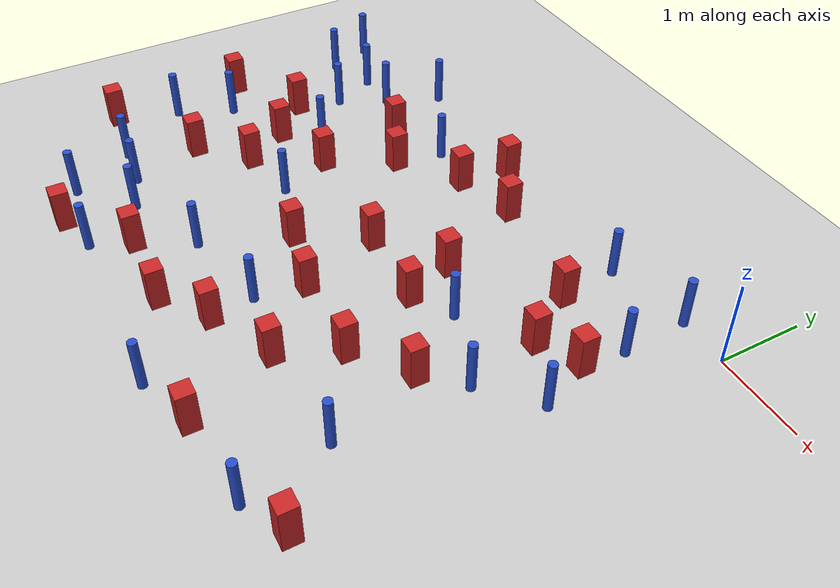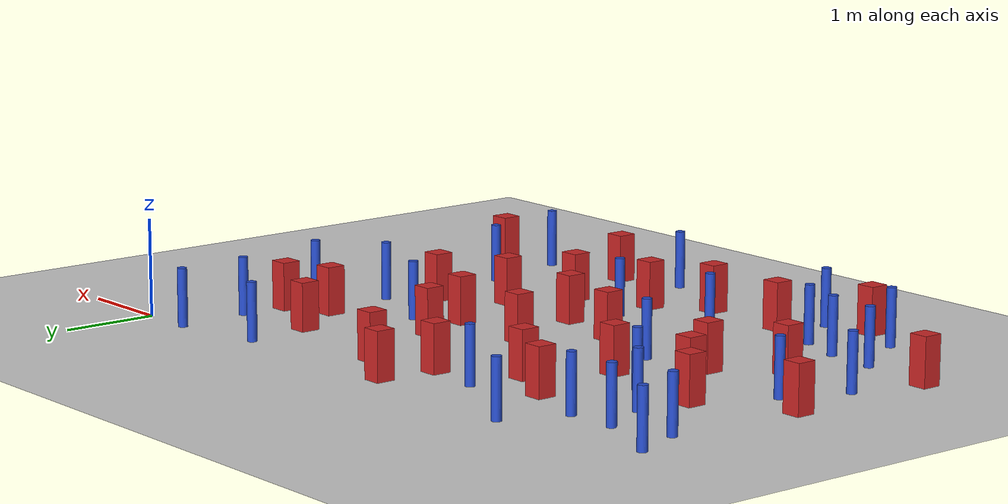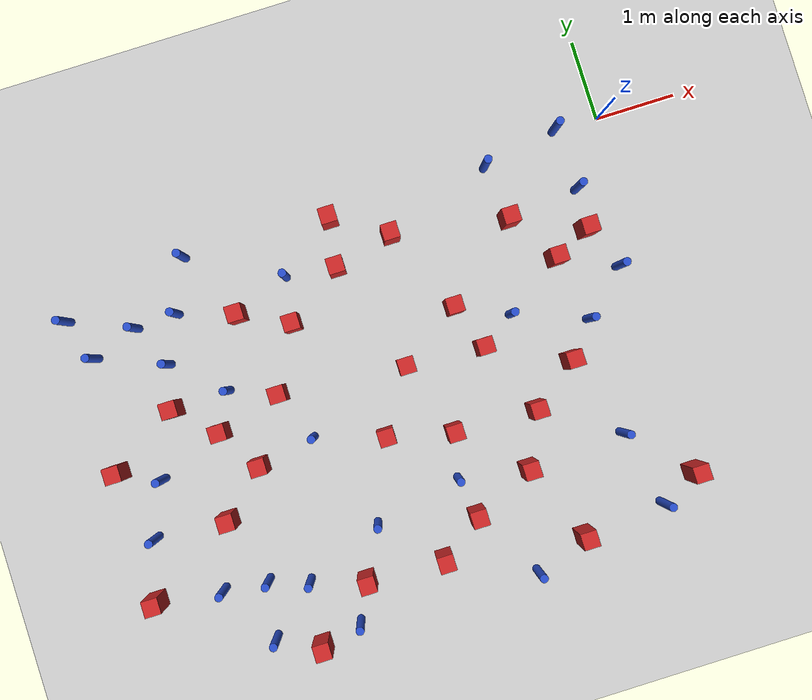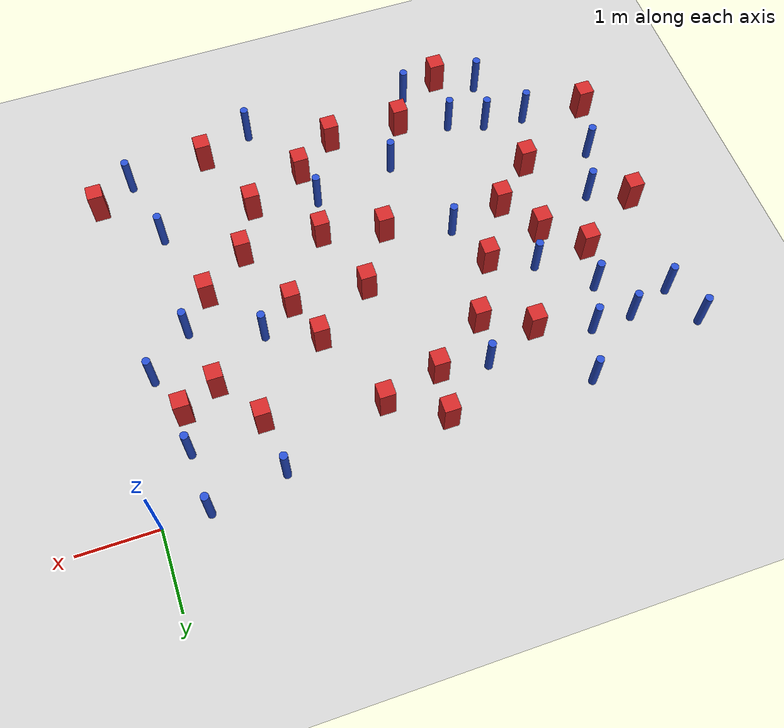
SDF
<sdf version="1.6">
 <world name="default">
  <model name="ground_plane">
   <static>1</static>
   <link name="link">
    <collision name="collision">
     <geometry><plane><normal>0 0 1</normal><size>100 100</size></plane></geometry>
     <surface><friction><ode><mu>100</mu><mu2>50</mu2></ode></friction></surface>
    </collision>
    <visual name="visual">
     <cast_shadows>0</cast_shadows>
     <geometry><plane><normal>0 0 1</normal><size>100 100</size></plane></geometry>
     <material>
      <ambient>1.0 1.0 1.0 1.0</ambient>
      <diffuse>0.8 0.8 0.8 1.0</diffuse>
      <specular>0.01 0.01 0.01 1.000000</specular>
     </material>
    </visual>
   </link>
  </model>
  <model name="pole_obstacle3">
   <static>true</static>
   <pose>-4.23979861048 -0.73387135602 2.88873142074e-08 -9.90536689837e-09 4.60219948989e-07 -1.2096599496e-07</pose>
   <link name="link">
    <pose>0 0 0.3 0 -0 0</pose>
    <inertial>
     <mass>1</mass>
     <inertia><ixx>0.145833</ixx><ixy>0</ixy><ixz>0</ixz><iyy>0.145833</iyy><iyz>0</iyz><izz>0.125</izz></inertia>
    </inertial>
    <collision name="collision">
     <geometry><cylinder><radius>0.05</radius><length>.6</length></cylinder></geometry>
    </collision>
    <visual name="visual">
     <geometry><cylinder><radius>0.05</radius><length>.6</length></cylinder></geometry>
     <material>
      <script><name>Gazebo/Blue</name><uri>file://media/materials/scripts/gazebo.material</uri></script>
     </material>
    </visual>
   </link>
  </model>
  <model name="square_post_obstacle6">
   <static>true</static>
   <pose>-0.216550293037 -4.45965338208 8.22691968438e-08 7.22125133819e-06 -7.54495500217e-07 2.29674213826e-05</pose>
   <link name="link">
    <pose>0 0 0.25 0 -0 0</pose>
    <inertial>
     <mass>100</mass>
     <inertia>
      <ixx>0.166667</ixx>
      <ixy>0</ixy>
      <ixz>0</ixz>
      <iyy>0.166667</iyy>
      <iyz>0</iyz>
      <izz>0.166667</izz>
     </inertia>
    </inertial>
    <collision name="collision"><geometry><box><size>.2 .2 .5</size></box></geometry></collision>
    <visual name="visual">
     <geometry><box><size>.2 .2 .5</size></box></geometry>
     <material>
      <script><name>Gazebo/Red</name><uri>file://media/materials/scripts/gazebo.material</uri></script>
     </material>
    </visual>
   </link>
  </model>
  <model name="pole_obstacle12">
   <static>true</static>
   <pose>-4.60353962773 -4.98954134654 2.88873142074e-08 -9.90536690842e-09 4.60219948965e-07 -1.20965994976e-07</pose>
   <link name="link">
    <pose>0 0 0.3 0 -0 0</pose>
    <inertial>
     <mass>1</mass>
     <inertia><ixx>0.145833</ixx><ixy>0</ixy><ixz>0</ixz><iyy>0.145833</iyy><iyz>0</iyz><izz>0.125</izz></inertia>
    </inertial>
    <collision name="collision">
     <geometry><cylinder><radius>0.05</radius><length>.6</length></cylinder></geometry>
    </collision>
    <visual name="visual">
     <geometry><cylinder><radius>0.05</radius><length>.6</length></cylinder></geometry>
     <material>
      <script><name>Gazebo/Blue</name><uri>file://media/materials/scripts/gazebo.material</uri></script>
     </material>
    </visual>
   </link>
  </model>
  <model name="square_post_obstacle11">
   <static>true</static>
   <pose>-2.19722956945 -2.26481945493 8.22691968438e-08 7.2212513382e-06 -7.54495500217e-07 2.29674213826e-05</pose>
   <link name="link">
    <pose>0 0 0.25 0 -0 0</pose>
    <inertial>
     <mass>100</mass>
     <inertia>
      <ixx>0.166667</ixx>
      <ixy>0</ixy>
      <ixz>0</ixz>
      <iyy>0.166667</iyy>
      <iyz>0</iyz>
      <izz>0.166667</izz>
     </inertia>
    </inertial>
    <collision name="collision"><geometry><box><size>.2 .2 .5</size></box></geometry></collision>
    <visual name="visual">
     <geometry><box><size>.2 .2 .5</size></box></geometry>
     <material>
      <script><name>Gazebo/Red</name><uri>file://media/materials/scripts/gazebo.material</uri></script>
     </material>
    </visual>
   </link>
  </model>
  <model name="pole_obstacle14">
   <static>true</static>
   <pose>-6.65760628513 -3.29719813045 2.88873142074e-08 -9.90536690245e-09 4.6021994898e-07 -1.20965994966e-07</pose>
   <link name="link">
    <pose>0 0 0.3 0 -0 0</pose>
    <inertial>
     <mass>1</mass>
     <inertia><ixx>0.145833</ixx><ixy>0</ixy><ixz>0</ixz><iyy>0.145833</iyy><iyz>0</iyz><izz>0.125</izz></inertia>
    </inertial>
    <collision name="collision">
     <geometry><cylinder><radius>0.05</radius><length>.6</length></cylinder></geometry>
    </collision>
    <visual name="visual">
     <geometry><cylinder><radius>0.05</radius><length>.6</length></cylinder></geometry>
     <material>
      <script><name>Gazebo/Blue</name><uri>file://media/materials/scripts/gazebo.material</uri></script>
     </material>
    </visual>
   </link>
  </model>
  <model name="square_post_obstacle22">
   <static>true</static>
   <pose>-6.01171787519 -1.87240150905 8.22691968438e-08 7.2212513382e-06 -7.54495500217e-07 2.29674213826e-05</pose>
   <link name="link">
    <pose>0 0 0.25 0 -0 0</pose>
    <inertial>
     <mass>100</mass>
     <inertia>
      <ixx>0.166667</ixx>
      <ixy>0</ixy>
      <ixz>0</ixz>
      <iyy>0.166667</iyy>
      <iyz>0</iyz>
      <izz>0.166667</izz>
     </inertia>
    </inertial>
    <collision name="collision"><geometry><box><size>.2 .2 .5</size></box></geometry></collision>
    <visual name="visual">
     <geometry><box><size>.2 .2 .5</size></box></geometry>
     <material>
      <script><name>Gazebo/Red</name><uri>file://media/materials/scripts/gazebo.material</uri></script>
     </material>
    </visual>
   </link>
  </model>
  <model name="pole_obstacle38">
   <static>true</static>
   <pose>-0.532749443173 -0.762074429868 2.88873142074e-08 -9.90536689626e-09 4.60219948994e-07 -1.20965994957e-07</pose>
   <link name="link">
    <pose>0 0 0.3 0 -0 0</pose>
    <inertial>
     <mass>1</mass>
     <inertia><ixx>0.145833</ixx><ixy>0</ixy><ixz>0</ixz><iyy>0.145833</iyy><iyz>0</iyz><izz>0.125</izz></inertia>
    </inertial>
    <collision name="collision">
     <geometry><cylinder><radius>0.05</radius><length>.6</length></cylinder></geometry>
    </collision>
    <visual name="visual">
     <geometry><cylinder><radius>0.05</radius><length>.6</length></cylinder></geometry>
     <material>
      <script><name>Gazebo/Blue</name><uri>file://media/materials/scripts/gazebo.material</uri></script>
     </material>
    </visual>
   </link>
  </model>
  <model name="pole_obstacle44">
   <static>true</static>
   <pose>-4.05638267204 -3.92327730164 2.88873142074e-08 -9.90536690245e-09 4.6021994898e-07 -1.20965994966e-07</pose>
   <link name="link">
    <pose>0 0 0.3 0 -0 0</pose>
    <inertial>
     <mass>1</mass>
     <inertia><ixx>0.145833</ixx><ixy>0</ixy><ixz>0</ixz><iyy>0.145833</iyy><iyz>0</iyz><izz>0.125</izz></inertia>
    </inertial>
    <collision name="collision">
     <geometry><cylinder><radius>0.05</radius><length>.6</length></cylinder></geometry>
    </collision>
    <visual name="visual">
     <geometry><cylinder><radius>0.05</radius><length>.6</length></cylinder></geometry>
     <material>
      <script><name>Gazebo/Blue</name><uri>file://media/materials/scripts/gazebo.material</uri></script>
     </material>
    </visual>
   </link>
  </model>
  <model name="square_post_obstacle39">
   <static>true</static>
   <pose>-3.64302226044 -2.95067476787 8.22691968438e-08 7.2212513382e-06 -7.54495500217e-07 2.29674213826e-05</pose>
   <link name="link">
    <pose>0 0 0.25 0 -0 0</pose>
    <inertial>
     <mass>100</mass>
     <inertia>
      <ixx>0.166667</ixx>
      <ixy>0</ixy>
      <ixz>0</ixz>
      <iyy>0.166667</iyy>
      <iyz>0</iyz>
      <izz>0.166667</izz>
     </inertia>
    </inertial>
    <collision name="collision"><geometry><box><size>.2 .2 .5</size></box></geometry></collision>
    <visual name="visual">
     <geometry><box><size>.2 .2 .5</size></box></geometry>
     <material>
      <script><name>Gazebo/Red</name><uri>file://media/materials/scripts/gazebo.material</uri></script>
     </material>
    </visual>
   </link>
  </model>
  <model name="pole_obstacle55">
   <static>true</static>
   <pose>-6.05706122376 -4.13078437866 2.88873142074e-08 -9.90536690842e-09 4.60219948965e-07 -1.20965994976e-07</pose>
   <link name="link">
    <pose>0 0 0.3 0 -0 0</pose>
    <inertial>
     <mass>1</mass>
     <inertia><ixx>0.145833</ixx><ixy>0</ixy><ixz>0</ixz><iyy>0.145833</iyy><iyz>0</iyz><izz>0.125</izz></inertia>
    </inertial>
    <collision name="collision">
     <geometry><cylinder><radius>0.05</radius><length>.6</length></cylinder></geometry>
    </collision>
    <visual name="visual">
     <geometry><cylinder><radius>0.05</radius><length>.6</length></cylinder></geometry>
     <material>
      <script><name>Gazebo/Blue</name><uri>file://media/materials/scripts/gazebo.material</uri></script>
     </material>
    </visual>
   </link>
  </model>
  <model name="square_post_obstacle42">
   <static>true</static>
   <pose>-3.61653651448 -0.815498500545 8.22691968438e-08 7.2212513382e-06 -7.54495500217e-07 2.29674213826e-05</pose>
   <link name="link">
    <pose>0 0 0.25 0 -0 0</pose>
    <inertial>
     <mass>100</mass>
     <inertia>
      <ixx>0.166667</ixx>
      <ixy>0</ixy>
      <ixz>0</ixz>
      <iyy>0.166667</iyy>
      <iyz>0</iyz>
      <izz>0.166667</izz>
     </inertia>
    </inertial>
    <collision name="collision"><geometry><box><size>.2 .2 .5</size></box></geometry></collision>
    <visual name="visual">
     <geometry><box><size>.2 .2 .5</size></box></geometry>
     <material>
      <script><name>Gazebo/Red</name><uri>file://media/materials/scripts/gazebo.material</uri></script>
     </material>
    </visual>
   </link>
  </model>
  <model name="square_post_obstacle43">
   <static>true</static>
   <pose>-3.40973910875 -4.57491716553 8.22691968438e-08 7.2212513382e-06 -7.54495500217e-07 2.29674213826e-05</pose>
   <link name="link">
    <pose>0 0 0.25 0 -0 0</pose>
    <inertial>
     <mass>100</mass>
     <inertia>
      <ixx>0.166667</ixx>
      <ixy>0</ixy>
      <ixz>0</ixz>
      <iyy>0.166667</iyy>
      <iyz>0</iyz>
      <izz>0.166667</izz>
     </inertia>
    </inertial>
    <collision name="collision"><geometry><box><size>.2 .2 .5</size></box></geometry></collision>
    <visual name="visual">
     <geometry><box><size>.2 .2 .5</size></box></geometry>
     <material>
      <script><name>Gazebo/Red</name><uri>file://media/materials/scripts/gazebo.material</uri></script>
     </material>
    </visual>
   </link>
  </model>
  <model name="pole_obstacle57">
   <static>true</static>
   <pose>-0.692498434496 -4.71194350548 2.88873142074e-08 -9.90536689661e-09 4.60219948993e-07 -1.20965994957e-07</pose>
   <link name="link">
    <pose>0 0 0.3 0 -0 0</pose>
    <inertial>
     <mass>1</mass>
     <inertia><ixx>0.145833</ixx><ixy>0</ixy><ixz>0</ixz><iyy>0.145833</iyy><iyz>0</iyz><izz>0.125</izz></inertia>
    </inertial>
    <collision name="collision">
     <geometry><cylinder><radius>0.05</radius><length>.6</length></cylinder></geometry>
    </collision>
    <visual name="visual">
     <geometry><cylinder><radius>0.05</radius><length>.6</length></cylinder></geometry>
     <material>
      <script><name>Gazebo/Blue</name><uri>file://media/materials/scripts/gazebo.material</uri></script>
     </material>
    </visual>
   </link>
  </model>
  <model name="square_post_obstacle44">
   <static>true</static>
   <pose>-4.73653638583 -2.07803737317 8.22691968438e-08 7.2212513382e-06 -7.54495500217e-07 2.29674213826e-05</pose>
   <link name="link">
    <pose>0 0 0.25 0 -0 0</pose>
    <inertial>
     <mass>100</mass>
     <inertia>
      <ixx>0.166667</ixx>
      <ixy>0</ixy>
      <ixz>0</ixz>
      <iyy>0.166667</iyy>
      <iyz>0</iyz>
      <izz>0.166667</izz>
     </inertia>
    </inertial>
    <collision name="collision"><geometry><box><size>.2 .2 .5</size></box></geometry></collision>
    <visual name="visual">
     <geometry><box><size>.2 .2 .5</size></box></geometry>
     <material>
      <script><name>Gazebo/Red</name><uri>file://media/materials/scripts/gazebo.material</uri></script>
     </material>
    </visual>
   </link>
  </model>
  <model name="square_post_obstacle46">
   <static>true</static>
   <pose>-1.8144862901 -3.17718278038 8.22691968438e-08 7.2212513382e-06 -7.54495500217e-07 2.29674213826e-05</pose>
   <link name="link">
    <pose>0 0 0.25 0 -0 0</pose>
    <inertial>
     <mass>100</mass>
     <inertia>
      <ixx>0.166667</ixx>
      <ixy>0</ixy>
      <ixz>0</ixz>
      <iyy>0.166667</iyy>
      <iyz>0</iyz>
      <izz>0.166667</izz>
     </inertia>
    </inertial>
    <collision name="collision"><geometry><box><size>.2 .2 .5</size></box></geometry></collision>
    <visual name="visual">
     <geometry><box><size>.2 .2 .5</size></box></geometry>
     <material>
      <script><name>Gazebo/Red</name><uri>file://media/materials/scripts/gazebo.material</uri></script>
     </material>
    </visual>
   </link>
  </model>
  <model name="pole_obstacle62">
   <static>true</static>
   <pose>-0.873440446997 -2.32026437902 2.88873142074e-08 -9.90536689636e-09 4.60219948994e-07 -1.20965994958e-07</pose>
   <link name="link">
    <pose>0 0 0.3 0 -0 0</pose>
    <inertial>
     <mass>1</mass>
     <inertia><ixx>0.145833</ixx><ixy>0</ixy><ixz>0</ixz><iyy>0.145833</iyy><iyz>0</iyz><izz>0.125</izz></inertia>
    </inertial>
    <collision name="collision">
     <geometry><cylinder><radius>0.05</radius><length>.6</length></cylinder></geometry>
    </collision>
    <visual name="visual">
     <geometry><cylinder><radius>0.05</radius><length>.6</length></cylinder></geometry>
     <material>
      <script><name>Gazebo/Blue</name><uri>file://media/materials/scripts/gazebo.material</uri></script>
     </material>
    </visual>
   </link>
  </model>
  <model name="square_post_obstacle56">
   <static>true</static>
   <pose>-4.32513986169 -1.30729030034 8.22691968438e-08 7.2212513382e-06 -7.54495500217e-07 2.29674213826e-05</pose>
   <link name="link">
    <pose>0 0 0.25 0 -0 0</pose>
    <inertial>
     <mass>100</mass>
     <inertia>
      <ixx>0.166667</ixx>
      <ixy>0</ixy>
      <ixz>0</ixz>
      <iyy>0.166667</iyy>
      <iyz>0</iyz>
      <izz>0.166667</izz>
     </inertia>
    </inertial>
    <collision name="collision"><geometry><box><size>.2 .2 .5</size></box></geometry></collision>
    <visual name="visual">
     <geometry><box><size>.2 .2 .5</size></box></geometry>
     <material>
      <script><name>Gazebo/Red</name><uri>file://media/materials/scripts/gazebo.material</uri></script>
     </material>
    </visual>
   </link>
  </model>
  <model name="square_post_obstacle57">
   <static>true</static>
   <pose>-1.44071821593 -0.868939005425 8.22691968438e-08 7.2212513382e-06 -7.54495500217e-07 2.29674213826e-05</pose>
   <link name="link">
    <pose>0 0 0.25 0 -0 0</pose>
    <inertial>
     <mass>100</mass>
     <inertia>
      <ixx>0.166667</ixx>
      <ixy>0</ixy>
      <ixz>0</ixz>
      <iyy>0.166667</iyy>
      <iyz>0</iyz>
      <izz>0.166667</izz>
     </inertia>
    </inertial>
    <collision name="collision"><geometry><box><size>.2 .2 .5</size></box></geometry></collision>
    <visual name="visual">
     <geometry><box><size>.2 .2 .5</size></box></geometry>
     <material>
      <script><name>Gazebo/Red</name><uri>file://media/materials/scripts/gazebo.material</uri></script>
     </material>
    </visual>
   </link>
  </model>
  <model name="square_post_obstacle62">
   <static>true</static>
   <pose>-4.93262985413 -1.00334173707 8.22691968438e-08 7.2212513382e-06 -7.54495500217e-07 2.29674213826e-05</pose>
   <link name="link">
    <pose>0 0 0.25 0 -0 0</pose>
    <inertial>
     <mass>100</mass>
     <inertia>
      <ixx>0.166667</ixx>
      <ixy>0</ixy>
      <ixz>0</ixz>
      <iyy>0.166667</iyy>
      <iyz>0</iyz>
      <izz>0.166667</izz>
     </inertia>
    </inertial>
    <collision name="collision"><geometry><box><size>.2 .2 .5</size></box></geometry></collision>
    <visual name="visual">
     <geometry><box><size>.2 .2 .5</size></box></geometry>
     <material>
      <script><name>Gazebo/Red</name><uri>file://media/materials/scripts/gazebo.material</uri></script>
     </material>
    </visual>
   </link>
  </model>
  <model name="square_post_obstacle63">
   <static>true</static>
   <pose>-3.16455239061 -2.20939125798 8.22691968438e-08 7.2212513382e-06 -7.54495500217e-07 2.29674213826e-05</pose>
   <link name="link">
    <pose>0 0 0.25 0 -0 0</pose>
    <inertial>
     <mass>100</mass>
     <inertia>
      <ixx>0.166667</ixx>
      <ixy>0</ixy>
      <ixz>0</ixz>
      <iyy>0.166667</iyy>
      <iyz>0</iyz>
      <izz>0.166667</izz>
     </inertia>
    </inertial>
    <collision name="collision"><geometry><box><size>.2 .2 .5</size></box></geometry></collision>
    <visual name="visual">
     <geometry><box><size>.2 .2 .5</size></box></geometry>
     <material>
      <script><name>Gazebo/Red</name><uri>file://media/materials/scripts/gazebo.material</uri></script>
     </material>
    </visual>
   </link>
  </model>
  <model name="pole_obstacle84">
   <static>true</static>
   <pose>-6.37640677656 -2.64483573966 2.88873142074e-08 -9.90536690245e-09 4.6021994898e-07 -1.20965994966e-07</pose>
   <link name="link">
    <pose>0 0 0.3 0 -0 0</pose>
    <inertial>
     <mass>1</mass>
     <inertia><ixx>0.145833</ixx><ixy>0</ixy><ixz>0</ixz><iyy>0.145833</iyy><iyz>0</iyz><izz>0.125</izz></inertia>
    </inertial>
    <collision name="collision">
     <geometry><cylinder><radius>0.05</radius><length>.6</length></cylinder></geometry>
    </collision>
    <visual name="visual">
     <geometry><cylinder><radius>0.05</radius><length>.6</length></cylinder></geometry>
     <material>
      <script><name>Gazebo/Blue</name><uri>file://media/materials/scripts/gazebo.material</uri></script>
     </material>
    </visual>
   </link>
  </model>
  <model name="pole_obstacle88">
   <static>true</static>
   <pose>-2.96668676518 -3.69302314242 2.88873142074e-08 -9.90536690232e-09 4.6021994898e-07 -1.20965994968e-07</pose>
   <link name="link">
    <pose>0 0 0.3 0 -0 0</pose>
    <inertial>
     <mass>1</mass>
     <inertia><ixx>0.145833</ixx><ixy>0</ixy><ixz>0</ixz><iyy>0.145833</iyy><iyz>0</iyz><izz>0.125</izz></inertia>
    </inertial>
    <collision name="collision">
     <geometry><cylinder><radius>0.05</radius><length>.6</length></cylinder></geometry>
    </collision>
    <visual name="visual">
     <geometry><cylinder><radius>0.05</radius><length>.6</length></cylinder></geometry>
     <material>
      <script><name>Gazebo/Blue</name><uri>file://media/materials/scripts/gazebo.material</uri></script>
     </material>
    </visual>
   </link>
  </model>
  <model name="square_post_obstacle75">
   <static>true</static>
   <pose>-2.84499386124 -3.14080119086 8.22691968438e-08 7.2212513382e-06 -7.54495500217e-07 2.29674213826e-05</pose>
   <link name="link">
    <pose>0 0 0.25 0 -0 0</pose>
    <inertial>
     <mass>100</mass>
     <inertia>
      <ixx>0.166667</ixx>
      <ixy>0</ixy>
      <ixz>0</ixz>
      <iyy>0.166667</iyy>
      <iyz>0</iyz>
      <izz>0.166667</izz>
     </inertia>
    </inertial>
    <collision name="collision"><geometry><box><size>.2 .2 .5</size></box></geometry></collision>
    <visual name="visual">
     <geometry><box><size>.2 .2 .5</size></box></geometry>
     <material>
      <script><name>Gazebo/Red</name><uri>file://media/materials/scripts/gazebo.material</uri></script>
     </material>
    </visual>
   </link>
  </model>
  <model name="square_post_obstacle78">
   <static>true</static>
   <pose>-3.52881716617 -0.21738566377 8.22691968438e-08 7.2212513382e-06 -7.54495500217e-07 2.29674213826e-05</pose>
   <link name="link">
    <pose>0 0 0.25 0 -0 0</pose>
    <inertial>
     <mass>100</mass>
     <inertia>
      <ixx>0.166667</ixx>
      <ixy>0</ixy>
      <ixz>0</ixz>
      <iyy>0.166667</iyy>
      <iyz>0</iyz>
      <izz>0.166667</izz>
     </inertia>
    </inertial>
    <collision name="collision"><geometry><box><size>.2 .2 .5</size></box></geometry></collision>
    <visual name="visual">
     <geometry><box><size>.2 .2 .5</size></box></geometry>
     <material>
      <script><name>Gazebo/Red</name><uri>file://media/materials/scripts/gazebo.material</uri></script>
     </material>
    </visual>
   </link>
  </model>
  <model name="pole_obstacle94">
   <static>true</static>
   <pose>-1.5244653003 -0.171460011078 2.88873142074e-08 -9.90536689982e-09 4.60219948986e-07 -1.20965994963e-07</pose>
   <link name="link">
    <pose>0 0 0.3 0 -0 0</pose>
    <inertial>
     <mass>1</mass>
     <inertia><ixx>0.145833</ixx><ixy>0</ixy><ixz>0</ixz><iyy>0.145833</iyy><iyz>0</iyz><izz>0.125</izz></inertia>
    </inertial>
    <collision name="collision">
     <geometry><cylinder><radius>0.05</radius><length>.6</length></cylinder></geometry>
    </collision>
    <visual name="visual">
     <geometry><cylinder><radius>0.05</radius><length>.6</length></cylinder></geometry>
     <material>
      <script><name>Gazebo/Blue</name><uri>file://media/materials/scripts/gazebo.material</uri></script>
     </material>
    </visual>
   </link>
  </model>
  <model name="pole_obstacle97">
   <static>true</static>
   <pose>-5.9055518163 -1.33322899892 2.88873142074e-08 -9.90536689445e-09 4.60219948999e-07 -1.20965994956e-07</pose>
   <link name="link">
    <pose>0 0 0.3 0 -0 0</pose>
    <inertial>
     <mass>1</mass>
     <inertia><ixx>0.145833</ixx><ixy>0</ixy><ixz>0</ixz><iyy>0.145833</iyy><iyz>0</iyz><izz>0.125</izz></inertia>
    </inertial>
    <collision name="collision">
     <geometry><cylinder><radius>0.05</radius><length>.6</length></cylinder></geometry>
    </collision>
    <visual name="visual">
     <geometry><cylinder><radius>0.05</radius><length>.6</length></cylinder></geometry>
     <material>
      <script><name>Gazebo/Blue</name><uri>file://media/materials/scripts/gazebo.material</uri></script>
     </material>
    </visual>
   </link>
  </model>
  <model name="square_post_obstacle100">
   <static>true</static>
   <pose>-1.0361815326 -1.48770343497 8.22691968438e-08 7.2212513382e-06 -7.54495500217e-07 2.29674213826e-05</pose>
   <link name="link">
    <pose>0 0 0.25 0 -0 0</pose>
    <inertial>
     <mass>100</mass>
     <inertia>
      <ixx>0.166667</ixx>
      <ixy>0</ixy>
      <ixz>0</ixz>
      <iyy>0.166667</iyy>
      <iyz>0</iyz>
      <izz>0.166667</izz>
     </inertia>
    </inertial>
    <collision name="collision"><geometry><box><size>.2 .2 .5</size></box></geometry></collision>
    <visual name="visual">
     <geometry><box><size>.2 .2 .5</size></box></geometry>
     <material>
      <script><name>Gazebo/Red</name><uri>file://media/materials/scripts/gazebo.material</uri></script>
     </material>
    </visual>
   </link>
  </model>
  <model name="pole_obstacle117">
   <static>true</static>
   <pose>-1.76385667078 -1.98476560065 2.88873142074e-08 -9.90536689899e-09 4.60219948988e-07 -1.20965994961e-07</pose>
   <link name="link">
    <pose>0 0 0.3 0 -0 0</pose>
    <inertial>
     <mass>1</mass>
     <inertia><ixx>0.145833</ixx><ixy>0</ixy><ixz>0</ixz><iyy>0.145833</iyy><iyz>0</iyz><izz>0.125</izz></inertia>
    </inertial>
    <collision name="collision">
     <geometry><cylinder><radius>0.05</radius><length>.6</length></cylinder></geometry>
    </collision>
    <visual name="visual">
     <geometry><cylinder><radius>0.05</radius><length>.6</length></cylinder></geometry>
     <material>
      <script><name>Gazebo/Blue</name><uri>file://media/materials/scripts/gazebo.material</uri></script>
     </material>
    </visual>
   </link>
  </model>
  <model name="square_post_obstacle116">
   <static>true</static>
   <pose>-5.54308460845 -2.30741090769 8.22691968438e-08 7.2212513382e-06 -7.54495500217e-07 2.29674213826e-05</pose>
   <link name="link">
    <pose>0 0 0.25 0 -0 0</pose>
    <inertial>
     <mass>100</mass>
     <inertia>
      <ixx>0.166667</ixx>
      <ixy>0</ixy>
      <ixz>0</ixz>
      <iyy>0.166667</iyy>
      <iyz>0</iyz>
      <izz>0.166667</izz>
     </inertia>
    </inertial>
    <collision name="collision"><geometry><box><size>.2 .2 .5</size></box></geometry></collision>
    <visual name="visual">
     <geometry><box><size>.2 .2 .5</size></box></geometry>
     <material>
      <script><name>Gazebo/Red</name><uri>file://media/materials/scripts/gazebo.material</uri></script>
     </material>
    </visual>
   </link>
  </model>
  <model name="square_post_obstacle119">
   <static>true</static>
   <pose>-6.87044123216 -2.40745694583 8.22691968438e-08 7.2212513382e-06 -7.54495500217e-07 2.29674213826e-05</pose>
   <link name="link">
    <pose>0 0 0.25 0 -0 0</pose>
    <inertial>
     <mass>100</mass>
     <inertia>
      <ixx>0.166667</ixx>
      <ixy>0</ixy>
      <ixz>0</ixz>
      <iyy>0.166667</iyy>
      <iyz>0</iyz>
      <izz>0.166667</izz>
     </inertia>
    </inertial>
    <collision name="collision"><geometry><box><size>.2 .2 .5</size></box></geometry></collision>
    <visual name="visual">
     <geometry><box><size>.2 .2 .5</size></box></geometry>
     <material>
      <script><name>Gazebo/Red</name><uri>file://media/materials/scripts/gazebo.material</uri></script>
     </material>
    </visual>
   </link>
  </model>
  <model name="square_post_obstacle122">
   <static>true</static>
   <pose>-1.7150781744 -4.8095765197 8.22691968438e-08 7.2212513382e-06 -7.54495500217e-07 2.29674213826e-05</pose>
   <link name="link">
    <pose>0 0 0.25 0 -0 0</pose>
    <inertial>
     <mass>100</mass>
     <inertia>
      <ixx>0.166667</ixx>
      <ixy>0</ixy>
      <ixz>0</ixz>
      <iyy>0.166667</iyy>
      <iyz>0</iyz>
      <izz>0.166667</izz>
     </inertia>
    </inertial>
    <collision name="collision"><geometry><box><size>.2 .2 .5</size></box></geometry></collision>
    <visual name="visual">
     <geometry><box><size>.2 .2 .5</size></box></geometry>
     <material>
      <script><name>Gazebo/Red</name><uri>file://media/materials/scripts/gazebo.material</uri></script>
     </material>
    </visual>
   </link>
  </model>
  <model name="pole_obstacle128">
   <static>true</static>
   <pose>-2.37861562832 -5.05012011273 2.88873142074e-08 -9.90536689859e-09 4.60219948989e-07 -1.20965994961e-07</pose>
   <link name="link">
    <pose>0 0 0.3 0 -0 0</pose>
    <inertial>
     <mass>1</mass>
     <inertia><ixx>0.145833</ixx><ixy>0</ixy><ixz>0</ixz><iyy>0.145833</iyy><iyz>0</iyz><izz>0.125</izz></inertia>
    </inertial>
    <collision name="collision">
     <geometry><cylinder><radius>0.05</radius><length>.6</length></cylinder></geometry>
    </collision>
    <visual name="visual">
     <geometry><cylinder><radius>0.05</radius><length>.6</length></cylinder></geometry>
     <material>
      <script><name>Gazebo/Blue</name><uri>file://media/materials/scripts/gazebo.material</uri></script>
     </material>
    </visual>
   </link>
  </model>
  <model name="pole_obstacle130">
   <static>true</static>
   <pose>-5.03310158336 -4.3373495684 2.88873142074e-08 -9.90536690842e-09 4.60219948965e-07 -1.20965994976e-07</pose>
   <link name="link">
    <pose>0 0 0.3 0 -0 0</pose>
    <inertial>
     <mass>1</mass>
     <inertia><ixx>0.145833</ixx><ixy>0</ixy><ixz>0</ixz><iyy>0.145833</iyy><iyz>0</iyz><izz>0.125</izz></inertia>
    </inertial>
    <collision name="collision">
     <geometry><cylinder><radius>0.05</radius><length>.6</length></cylinder></geometry>
    </collision>
    <visual name="visual">
     <geometry><cylinder><radius>0.05</radius><length>.6</length></cylinder></geometry>
     <material>
      <script><name>Gazebo/Blue</name><uri>file://media/materials/scripts/gazebo.material</uri></script>
     </material>
    </visual>
   </link>
  </model>
  <model name="pole_obstacle135">
   <static>true</static>
   <pose>-6.9360440718 -0.473844337645 2.88873142074e-08 -9.90536689333e-09 4.60219949001e-07 -1.20965994954e-07</pose>
   <link name="link">
    <pose>0 0 0.3 0 -0 0</pose>
    <inertial>
     <mass>1</mass>
     <inertia><ixx>0.145833</ixx><ixy>0</ixy><ixz>0</ixz><iyy>0.145833</iyy><iyz>0</iyz><izz>0.125</izz></inertia>
    </inertial>
    <collision name="collision">
     <geometry><cylinder><radius>0.05</radius><length>.6</length></cylinder></geometry>
    </collision>
    <visual name="visual">
     <geometry><cylinder><radius>0.05</radius><length>.6</length></cylinder></geometry>
     <material>
      <script><name>Gazebo/Blue</name><uri>file://media/materials/scripts/gazebo.material</uri></script>
     </material>
    </visual>
   </link>
  </model>
  <model name="pole_obstacle141">
   <static>true</static>
   <pose>-6.7365775313 -1.00340590628 2.88873142074e-08 -9.90536689582e-09 4.60219948995e-07 -1.20965994957e-07</pose>
   <link name="link">
    <pose>0 0 0.3 0 -0 0</pose>
    <inertial>
     <mass>1</mass>
     <inertia><ixx>0.145833</ixx><ixy>0</ixy><ixz>0</ixz><iyy>0.145833</iyy><iyz>0</iyz><izz>0.125</izz></inertia>
    </inertial>
    <collision name="collision">
     <geometry><cylinder><radius>0.05</radius><length>.6</length></cylinder></geometry>
    </collision>
    <visual name="visual">
     <geometry><cylinder><radius>0.05</radius><length>.6</length></cylinder></geometry>
     <material>
      <script><name>Gazebo/Blue</name><uri>file://media/materials/scripts/gazebo.material</uri></script>
     </material>
    </visual>
   </link>
  </model>
  <model name="pole_obstacle147">
   <static>true</static>
   <pose>-5.63389053734 -0.777888266852 2.88873142074e-08 -9.90536689837e-09 4.60219948989e-07 -1.2096599496e-07</pose>
   <link name="link">
    <pose>0 0 0.3 0 -0 0</pose>
    <inertial>
     <mass>1</mass>
     <inertia><ixx>0.145833</ixx><ixy>0</ixy><ixz>0</ixz><iyy>0.145833</iyy><iyz>0</iyz><izz>0.125</izz></inertia>
    </inertial>
    <collision name="collision">
     <geometry><cylinder><radius>0.05</radius><length>.6</length></cylinder></geometry>
    </collision>
    <visual name="visual">
     <geometry><cylinder><radius>0.05</radius><length>.6</length></cylinder></geometry>
     <material>
      <script><name>Gazebo/Blue</name><uri>file://media/materials/scripts/gazebo.material</uri></script>
     </material>
    </visual>
   </link>
  </model>
  <model name="pole_obstacle151">
   <static>true</static>
   <pose>-5.35680833965 -0.138813560701 2.88873142074e-08 -9.90536689223e-09 4.60219949004e-07 -1.20965994952e-07</pose>
   <link name="link">
    <pose>0 0 0.3 0 -0 0</pose>
    <inertial>
     <mass>1</mass>
     <inertia><ixx>0.145833</ixx><ixy>0</ixy><ixz>0</ixz><iyy>0.145833</iyy><iyz>0</iyz><izz>0.125</izz></inertia>
    </inertial>
    <collision name="collision">
     <geometry><cylinder><radius>0.05</radius><length>.6</length></cylinder></geometry>
    </collision>
    <visual name="visual">
     <geometry><cylinder><radius>0.05</radius><length>.6</length></cylinder></geometry>
     <material>
      <script><name>Gazebo/Blue</name><uri>file://media/materials/scripts/gazebo.material</uri></script>
     </material>
    </visual>
   </link>
  </model>
  <model name="square_post_obstacle145">
   <static>true</static>
   <pose>-2.1174933433 -3.83469463765 8.22691968438e-08 7.2212513382e-06 -7.54495500217e-07 2.29674213826e-05</pose>
   <link name="link">
    <pose>0 0 0.25 0 -0 0</pose>
    <inertial>
     <mass>100</mass>
     <inertia>
      <ixx>0.166667</ixx>
      <ixy>0</ixy>
      <ixz>0</ixz>
      <iyy>0.166667</iyy>
      <iyz>0</iyz>
      <izz>0.166667</izz>
     </inertia>
    </inertial>
    <collision name="collision"><geometry><box><size>.2 .2 .5</size></box></geometry></collision>
    <visual name="visual">
     <geometry><box><size>.2 .2 .5</size></box></geometry>
     <material>
      <script><name>Gazebo/Red</name><uri>file://media/materials/scripts/gazebo.material</uri></script>
     </material>
    </visual>
   </link>
  </model>
  <model name="square_post_obstacle147">
   <static>true</static>
   <pose>-2.40058731887 -1.69090034827 8.22691968438e-08 7.2212513382e-06 -7.54495500217e-07 2.29674213826e-05</pose>
   <link name="link">
    <pose>0 0 0.25 0 -0 0</pose>
    <inertial>
     <mass>100</mass>
     <inertia>
      <ixx>0.166667</ixx>
      <ixy>0</ixy>
      <ixz>0</ixz>
      <iyy>0.166667</iyy>
      <iyz>0</iyz>
      <izz>0.166667</izz>
     </inertia>
    </inertial>
    <collision name="collision"><geometry><box><size>.2 .2 .5</size></box></geometry></collision>
    <visual name="visual">
     <geometry><box><size>.2 .2 .5</size></box></geometry>
     <material>
      <script><name>Gazebo/Red</name><uri>file://media/materials/scripts/gazebo.material</uri></script>
     </material>
    </visual>
   </link>
  </model>
  <model name="pole_obstacle156">
   <static>true</static>
   <pose>-5.62037364669 -4.86943467668 2.88873142074e-08 -9.90536690842e-09 4.60219948965e-07 -1.20965994976e-07</pose>
   <link name="link">
    <pose>0 0 0.3 0 -0 0</pose>
    <inertial>
     <mass>1</mass>
     <inertia><ixx>0.145833</ixx><ixy>0</ixy><ixz>0</ixz><iyy>0.145833</iyy><iyz>0</iyz><izz>0.125</izz></inertia>
    </inertial>
    <collision name="collision">
     <geometry><cylinder><radius>0.05</radius><length>.6</length></cylinder></geometry>
    </collision>
    <visual name="visual">
     <geometry><cylinder><radius>0.05</radius><length>.6</length></cylinder></geometry>
     <material>
      <script><name>Gazebo/Blue</name><uri>file://media/materials/scripts/gazebo.material</uri></script>
     </material>
    </visual>
   </link>
  </model>
  <model name="pole_obstacle158">
   <static>true</static>
   <pose>-4.48950865219 -2.70006553344 2.88873142074e-08 -9.90536690245e-09 4.6021994898e-07 -1.20965994966e-07</pose>
   <link name="link">
    <pose>0 0 0.3 0 -0 0</pose>
    <inertial>
     <mass>1</mass>
     <inertia><ixx>0.145833</ixx><ixy>0</ixy><ixz>0</ixz><iyy>0.145833</iyy><iyz>0</iyz><izz>0.125</izz></inertia>
    </inertial>
    <collision name="collision">
     <geometry><cylinder><radius>0.05</radius><length>.6</length></cylinder></geometry>
    </collision>
    <visual name="visual">
     <geometry><cylinder><radius>0.05</radius><length>.6</length></cylinder></geometry>
     <material>
      <script><name>Gazebo/Blue</name><uri>file://media/materials/scripts/gazebo.material</uri></script>
     </material>
    </visual>
   </link>
  </model>
  <model name="pole_obstacle159">
   <static>true</static>
   <pose>-0.332099613933 -1.81321042661 2.88873142074e-08 -9.90536689905e-09 4.60219948988e-07 -1.2096599496e-07</pose>
   <link name="link">
    <pose>0 0 0.3 0 -0 0</pose>
    <inertial>
     <mass>1</mass>
     <inertia><ixx>0.145833</ixx><ixy>0</ixy><ixz>0</ixz><iyy>0.145833</iyy><iyz>0</iyz><izz>0.125</izz></inertia>
    </inertial>
    <collision name="collision">
     <geometry><cylinder><radius>0.05</radius><length>.6</length></cylinder></geometry>
    </collision>
    <visual name="visual">
     <geometry><cylinder><radius>0.05</radius><length>.6</length></cylinder></geometry>
     <material>
      <script><name>Gazebo/Blue</name><uri>file://media/materials/scripts/gazebo.material</uri></script>
     </material>
    </visual>
   </link>
  </model>
  <model name="square_post_obstacle157">
   <static>true</static>
   <pose>-5.20743600363 -2.83634788755 8.22691968438e-08 7.2212513382e-06 -7.54495500217e-07 2.29674213826e-05</pose>
   <link name="link">
    <pose>0 0 0.25 0 -0 0</pose>
    <inertial>
     <mass>100</mass>
     <inertia>
      <ixx>0.166667</ixx>
      <ixy>0</ixy>
      <ixz>0</ixz>
      <iyy>0.166667</iyy>
      <iyz>0</iyz>
      <izz>0.166667</izz>
     </inertia>
    </inertial>
    <collision name="collision"><geometry><box><size>.2 .2 .5</size></box></geometry></collision>
    <visual name="visual">
     <geometry><box><size>.2 .2 .5</size></box></geometry>
     <material>
      <script><name>Gazebo/Red</name><uri>file://media/materials/scripts/gazebo.material</uri></script>
     </material>
    </visual>
   </link>
  </model>
  <model name="pole_obstacle165">
   <static>true</static>
   <pose>-5.5098924101 -4.18290663301 2.88873142074e-08 -9.90536690842e-09 4.60219948965e-07 -1.20965994976e-07</pose>
   <link name="link">
    <pose>0 0 0.3 0 -0 0</pose>
    <inertial>
     <mass>1</mass>
     <inertia><ixx>0.145833</ixx><ixy>0</ixy><ixz>0</ixz><iyy>0.145833</iyy><iyz>0</iyz><izz>0.125</izz></inertia>
    </inertial>
    <collision name="collision">
     <geometry><cylinder><radius>0.05</radius><length>.6</length></cylinder></geometry>
    </collision>
    <visual name="visual">
     <geometry><cylinder><radius>0.05</radius><length>.6</length></cylinder></geometry>
     <material>
      <script><name>Gazebo/Blue</name><uri>file://media/materials/scripts/gazebo.material</uri></script>
     </material>
    </visual>
   </link>
  </model>
  <model name="square_post_obstacle160">
   <static>true</static>
   <pose>-2.87556399511 -0.624694415785 8.22691968438e-08 7.2212513382e-06 -7.54495500217e-07 2.29674213826e-05</pose>
   <link name="link">
    <pose>0 0 0.25 0 -0 0</pose>
    <inertial>
     <mass>100</mass>
     <inertia>
      <ixx>0.166667</ixx>
      <ixy>0</ixy>
      <ixz>0</ixz>
      <iyy>0.166667</iyy>
      <iyz>0</iyz>
      <izz>0.166667</izz>
     </inertia>
    </inertial>
    <collision name="collision"><geometry><box><size>.2 .2 .5</size></box></geometry></collision>
    <visual name="visual">
     <geometry><box><size>.2 .2 .5</size></box></geometry>
     <material>
      <script><name>Gazebo/Red</name><uri>file://media/materials/scripts/gazebo.material</uri></script>
     </material>
    </visual>
   </link>
  </model>
  <model name="pole_obstacle169">
   <static>true</static>
   <pose>-0.9033423055 -3.75943357864 2.88873142074e-08 -9.90536689636e-09 4.60219948994e-07 -1.20965994958e-07</pose>
   <link name="link">
    <pose>0 0 0.3 0 -0 0</pose>
    <inertial>
     <mass>1</mass>
     <inertia><ixx>0.145833</ixx><ixy>0</ixy><ixz>0</ixz><iyy>0.145833</iyy><iyz>0</iyz><izz>0.125</izz></inertia>
    </inertial>
    <collision name="collision">
     <geometry><cylinder><radius>0.05</radius><length>.6</length></cylinder></geometry>
    </collision>
    <visual name="visual">
     <geometry><cylinder><radius>0.05</radius><length>.6</length></cylinder></geometry>
     <material>
      <script><name>Gazebo/Blue</name><uri>file://media/materials/scripts/gazebo.material</uri></script>
     </material>
    </visual>
   </link>
  </model>
  <model name="square_post_obstacle170">
   <static>true</static>
   <pose>-4.3771133103 -4.53884381268 8.22691968438e-08 7.22125133819e-06 -7.54495500217e-07 2.29674213826e-05</pose>
   <link name="link">
    <pose>0 0 0.25 0 -0 0</pose>
    <inertial>
     <mass>100</mass>
     <inertia>
      <ixx>0.166667</ixx>
      <ixy>0</ixy>
      <ixz>0</ixz>
      <iyy>0.166667</iyy>
      <iyz>0</iyz>
      <izz>0.166667</izz>
     </inertia>
    </inertial>
    <collision name="collision"><geometry><box><size>.2 .2 .5</size></box></geometry></collision>
    <visual name="visual">
     <geometry><box><size>.2 .2 .5</size></box></geometry>
     <material>
      <script><name>Gazebo/Red</name><uri>file://media/materials/scripts/gazebo.material</uri></script>
     </material>
    </visual>
   </link>
  </model>
  <model name="square_post_obstacle182">
   <static>true</static>
   <pose>-2.87740170451 -4.18772234665 8.22691968438e-08 7.2212513382e-06 -7.54495500217e-07 2.29674213826e-05</pose>
   <link name="link">
    <pose>0 0 0.25 0 -0 0</pose>
    <inertial>
     <mass>100</mass>
     <inertia>
      <ixx>0.166667</ixx>
      <ixy>0</ixy>
      <ixz>0</ixz>
      <iyy>0.166667</iyy>
      <iyz>0</iyz>
      <izz>0.166667</izz>
     </inertia>
    </inertial>
    <collision name="collision"><geometry><box><size>.2 .2 .5</size></box></geometry></collision>
    <visual name="visual">
     <geometry><box><size>.2 .2 .5</size></box></geometry>
     <material>
      <script><name>Gazebo/Red</name><uri>file://media/materials/scripts/gazebo.material</uri></script>
     </material>
    </visual>
   </link>
  </model>
  <model name="square_post_obstacle189">
   <static>true</static>
   <pose>-0.576298105145 -1.26151070185 8.22691968438e-08 7.2212513382e-06 -7.54495500217e-07 2.29674213826e-05</pose>
   <link name="link">
    <pose>0 0 0.25 0 -0 0</pose>
    <inertial>
     <mass>100</mass>
     <inertia>
      <ixx>0.166667</ixx>
      <ixy>0</ixy>
      <ixz>0</ixz>
      <iyy>0.166667</iyy>
      <iyz>0</iyz>
      <izz>0.166667</izz>
     </inertia>
    </inertial>
    <collision name="collision"><geometry><box><size>.2 .2 .5</size></box></geometry></collision>
    <visual name="visual">
     <geometry><box><size>.2 .2 .5</size></box></geometry>
     <material>
      <script><name>Gazebo/Red</name><uri>file://media/materials/scripts/gazebo.material</uri></script>
     </material>
    </visual>
   </link>
  </model>
  <model name="square_post_obstacle195">
   <static>true</static>
   <pose>-5.75801841523 -3.34765987311 8.22691968438e-08 7.2212513382e-06 -7.54495500217e-07 2.29674213826e-05</pose>
   <link name="link">
    <pose>0 0 0.25 0 -0 0</pose>
    <inertial>
     <mass>100</mass>
     <inertia>
      <ixx>0.166667</ixx>
      <ixy>0</ixy>
      <ixz>0</ixz>
      <iyy>0.166667</iyy>
      <iyz>0</iyz>
      <izz>0.166667</izz>
     </inertia>
    </inertial>
    <collision name="collision"><geometry><box><size>.2 .2 .5</size></box></geometry></collision>
    <visual name="visual">
     <geometry><box><size>.2 .2 .5</size></box></geometry>
     <material>
      <script><name>Gazebo/Red</name><uri>file://media/materials/scripts/gazebo.material</uri></script>
     </material>
    </visual>
   </link>
  </model>
  <model name="square_post_obstacle199">
   <static>true</static>
   <pose>-6.8755906244 -4.02662187853 8.22691968438e-08 7.22125133819e-06 -7.54495500217e-07 2.29674213826e-05</pose>
   <link name="link">
    <pose>0 0 0.25 0 -0 0</pose>
    <inertial>
     <mass>100</mass>
     <inertia>
      <ixx>0.166667</ixx>
      <ixy>0</ixy>
      <ixz>0</ixz>
      <iyy>0.166667</iyy>
      <iyz>0</iyz>
      <izz>0.166667</izz>
     </inertia>
    </inertial>
    <collision name="collision"><geometry><box><size>.2 .2 .5</size></box></geometry></collision>
    <visual name="visual">
     <geometry><box><size>.2 .2 .5</size></box></geometry>
     <material>
      <script><name>Gazebo/Red</name><uri>file://media/materials/scripts/gazebo.material</uri></script>
     </material>
    </visual>
   </link>
  </model>
  <model name="square_post_obstacle203">
   <static>true</static>
   <pose>-5.11322327245 -5.12251016344 8.22691968438e-08 7.22125133819e-06 -7.54495500217e-07 2.29674213826e-05</pose>
   <link name="link">
    <pose>0 0 0.25 0 -0 0</pose>
    <inertial>
     <mass>100</mass>
     <inertia>
      <ixx>0.166667</ixx>
      <ixy>0</ixy>
      <ixz>0</ixz>
      <iyy>0.166667</iyy>
      <iyz>0</iyz>
      <izz>0.166667</izz>
     </inertia>
    </inertial>
    <collision name="collision"><geometry><box><size>.2 .2 .5</size></box></geometry></collision>
    <visual name="visual">
     <geometry><box><size>.2 .2 .5</size></box></geometry>
     <material>
      <script><name>Gazebo/Red</name><uri>file://media/materials/scripts/gazebo.material</uri></script>
     </material>
    </visual>
   </link>
  </model>
  <model name="pole_obstacle194">
   <static>true</static>
   <pose>-5.30820728298 -1.85346233064 2.88873142074e-08 -9.90536689445e-09 4.60219948999e-07 -1.20965994956e-07</pose>
   <link name="link">
    <pose>0 0 0.3 0 -0 0</pose>
    <inertial>
     <mass>1</mass>
     <inertia><ixx>0.145833</ixx><ixy>0</ixy><ixz>0</ixz><iyy>0.145833</iyy><iyz>0</iyz><izz>0.125</izz></inertia>
    </inertial>
    <collision name="collision">
     <geometry><cylinder><radius>0.05</radius><length>.6</length></cylinder></geometry>
    </collision>
    <visual name="visual">
     <geometry><cylinder><radius>0.05</radius><length>.6</length></cylinder></geometry>
     <material>
      <script><name>Gazebo/Blue</name><uri>file://media/materials/scripts/gazebo.material</uri></script>
     </material>
    </visual>
   </link>
  </model>
  <model name="pole_obstacle195">
   <static>true</static>
   <pose>-0.577188832334 0.00805928581395 2.88873142074e-08 -9.90536689783e-09 4.60219948991e-07 -1.2096599496e-07</pose>
   <link name="link">
    <pose>0 0 0.3 0 -0 0</pose>
    <inertial>
     <mass>1</mass>
     <inertia><ixx>0.145833</ixx><ixy>0</ixy><ixz>0</ixz><iyy>0.145833</iyy><iyz>0</iyz><izz>0.125</izz></inertia>
    </inertial>
    <collision name="collision">
     <geometry><cylinder><radius>0.05</radius><length>.6</length></cylinder></geometry>
    </collision>
    <visual name="visual">
     <geometry><cylinder><radius>0.05</radius><length>.6</length></cylinder></geometry>
     <material>
      <script><name>Gazebo/Blue</name><uri>file://media/materials/scripts/gazebo.material</uri></script>
     </material>
    </visual>
   </link>
  </model>
  <model name="pole_obstacle204">
   <static>true</static>
   <pose>-6.1604228667 -0.797414984017 2.88873142074e-08 -9.90536689837e-09 4.60219948989e-07 -1.2096599496e-07</pose>
   <link name="link">
    <pose>0 0 0.3 0 -0 0</pose>
    <inertial>
     <mass>1</mass>
     <inertia><ixx>0.145833</ixx><ixy>0</ixy><ixz>0</ixz><iyy>0.145833</iyy><iyz>0</iyz><izz>0.125</izz></inertia>
    </inertial>
    <collision name="collision">
     <geometry><cylinder><radius>0.05</radius><length>.6</length></cylinder></geometry>
    </collision>
    <visual name="visual">
     <geometry><cylinder><radius>0.05</radius><length>.6</length></cylinder></geometry>
     <material>
      <script><name>Gazebo/Blue</name><uri>file://media/materials/scripts/gazebo.material</uri></script>
     </material>
    </visual>
   </link>
  </model>
  <model name="square_post_obstacle221">
   <static>true</static>
   <pose>-1.22903996738 -2.72873003534 8.22691968438e-08 7.2212513382e-06 -7.54495500217e-07 2.29674213826e-05</pose>
   <link name="link">
    <pose>0 0 0.25 0 -0 0</pose>
    <inertial>
     <mass>100</mass>
     <inertia>
      <ixx>0.166667</ixx>
      <ixy>0</ixy>
      <ixz>0</ixz>
      <iyy>0.166667</iyy>
      <iyz>0</iyz>
      <izz>0.166667</izz>
     </inertia>
    </inertial>
    <collision name="collision"><geometry><box><size>.2 .2 .5</size></box></geometry></collision>
    <visual name="visual">
     <geometry><box><size>.2 .2 .5</size></box></geometry>
     <material>
      <script><name>Gazebo/Red</name><uri>file://media/materials/scripts/gazebo.material</uri></script>
     </material>
    </visual>
   </link>
  </model>
 </world>
</sdf>
